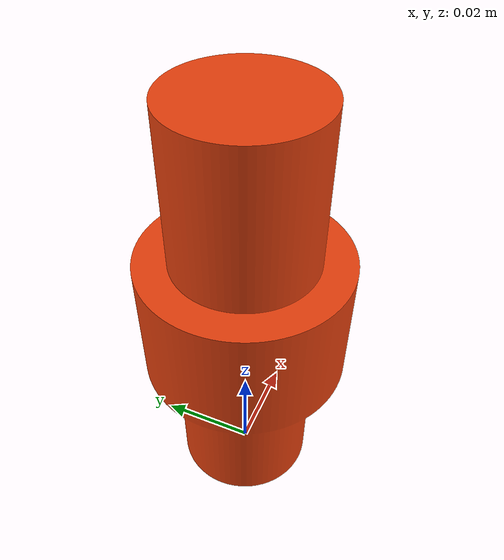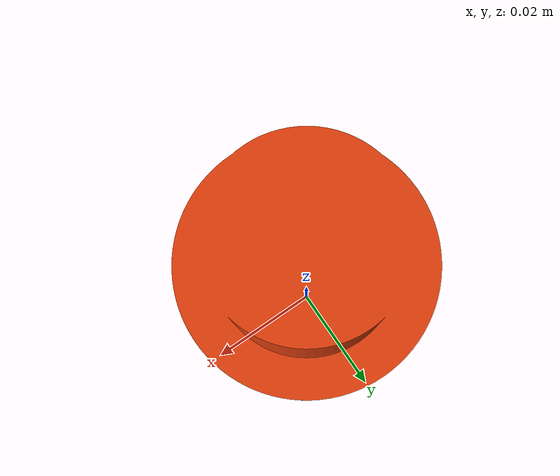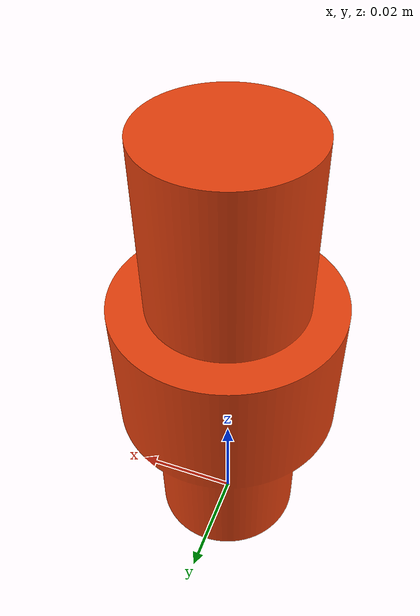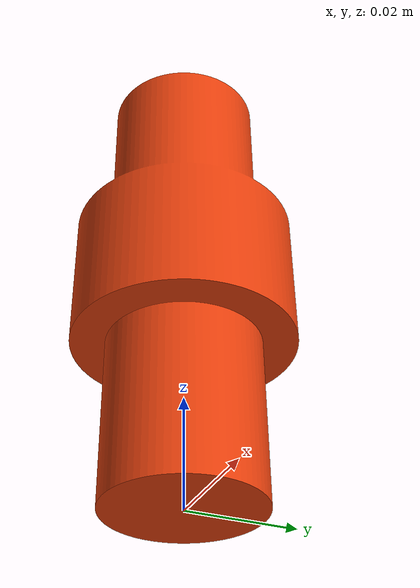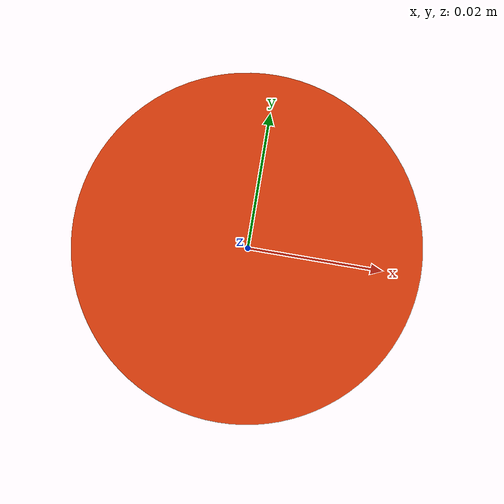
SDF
<?xml version='1.0'?>
<sdf version='1.6'>
  <model name='cran_field_round_peg'>
    <link name='link_12'>
      <pose frame=''>-0.06205 -0.14997 0 0 -0 0</pose>
<inertial>
    <pose>0.06205 0.1499 0.0427 0 0 0</pose>
    <mass>0.25</mass>
    <inertia>
      <ixx>0.0001769396432</ixx>
      <ixy>0</ixy>
      <ixz>-0</ixz>
      <iyy> 0.0001769396432</iyy>
      <iyz>0</iyz>
      <izz>0.00006999</izz>
    </inertia>
  </inertial>
          <visual name='visual'>
        <geometry>
          <mesh>
            <uri>model://cran_field_round_peg/cran_feld_peg1.stl</uri>
            <scale>0.001 0.001 0.001</scale>
          </mesh>
        </geometry>
        <material>
          <ambient>0.9 0.25 0.05 1</ambient>
          <diffuse>0.9 0.25 0.05 1</diffuse>
          <specular>0.01 0.01 0.01 1</specular>
          <emissive>0 0 0 1</emissive>
          <shader type='vertex'>
            <normal_map>__default__</normal_map>
          </shader>
        </material>
        <cast_shadows>1</cast_shadows>
        <transparency>0</transparency>
      </visual>
      <collision name='collision'>
        <laser_retro>0</laser_retro>
        <max_contacts>10</max_contacts>
        <pose frame=''>0 0 0 0 -0 0</pose>
        <geometry>
          <mesh>
            <uri>model://cran_field_round_peg/cran_feld_peg1.stl</uri>
            <scale>0.001 0.001 0.001</scale>
          </mesh>
        </geometry>

<surface>
          <friction>
            <ode>
              <mu>1.15</mu>
              <mu2>1.15</mu2>
            </ode>
          </friction>
          <contact>
            <ode>
              <kp>1e15</kp>
              <kd>1e13</kd>
              <min_depth>0.0001</min_depth>
              <max_vel>0</max_vel>
            </ode>
          </contact>
        </surface>
       </collision>
    </link>

    <static>0</static>
    <allow_auto_disable>1</allow_auto_disable>
  </model>
</sdf>
